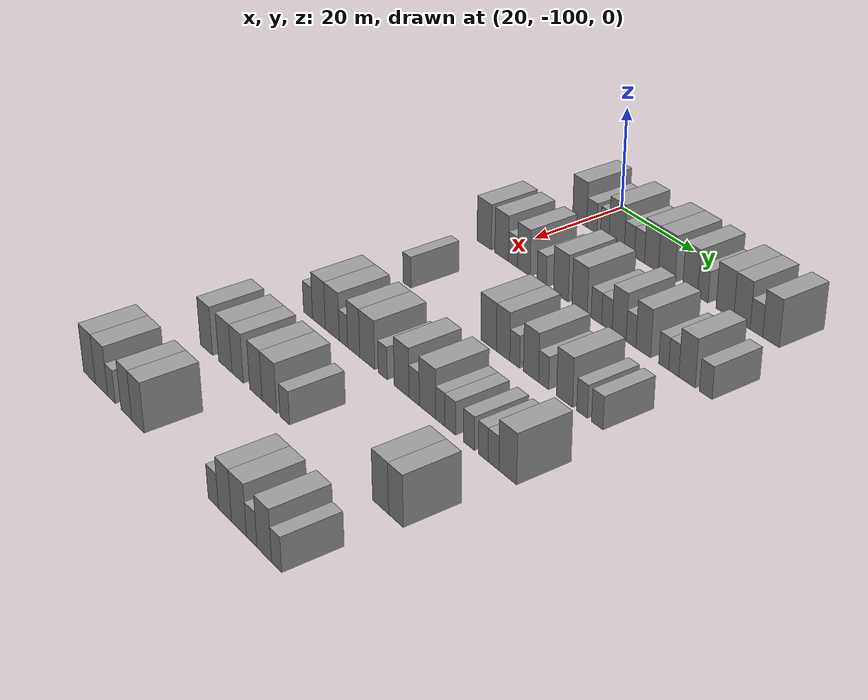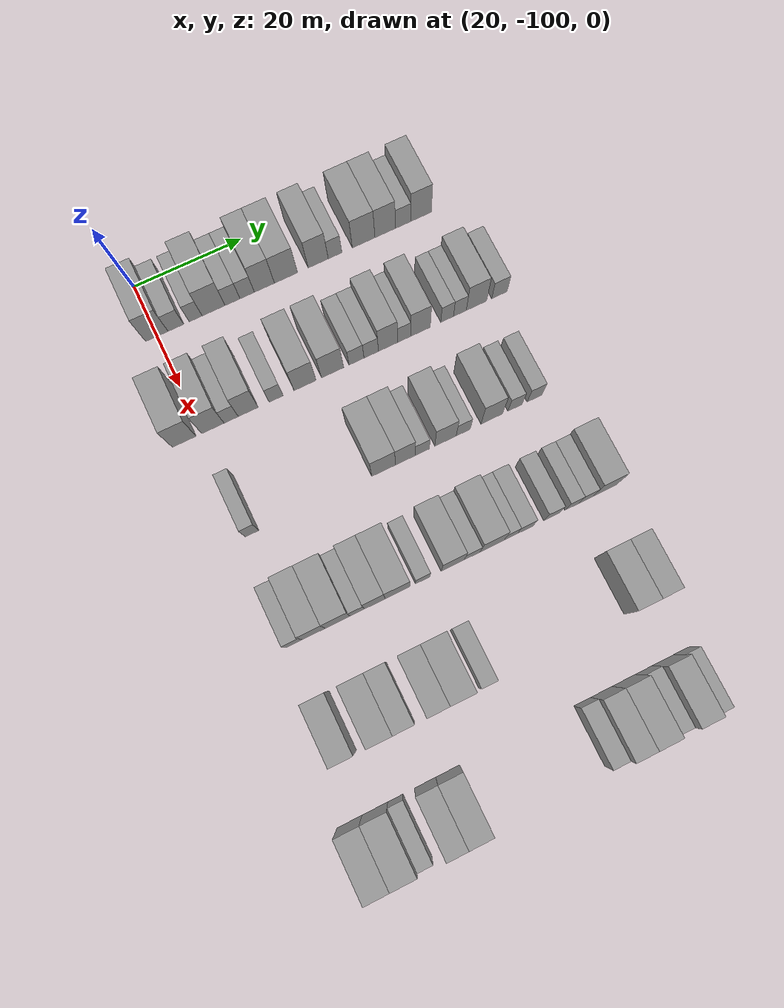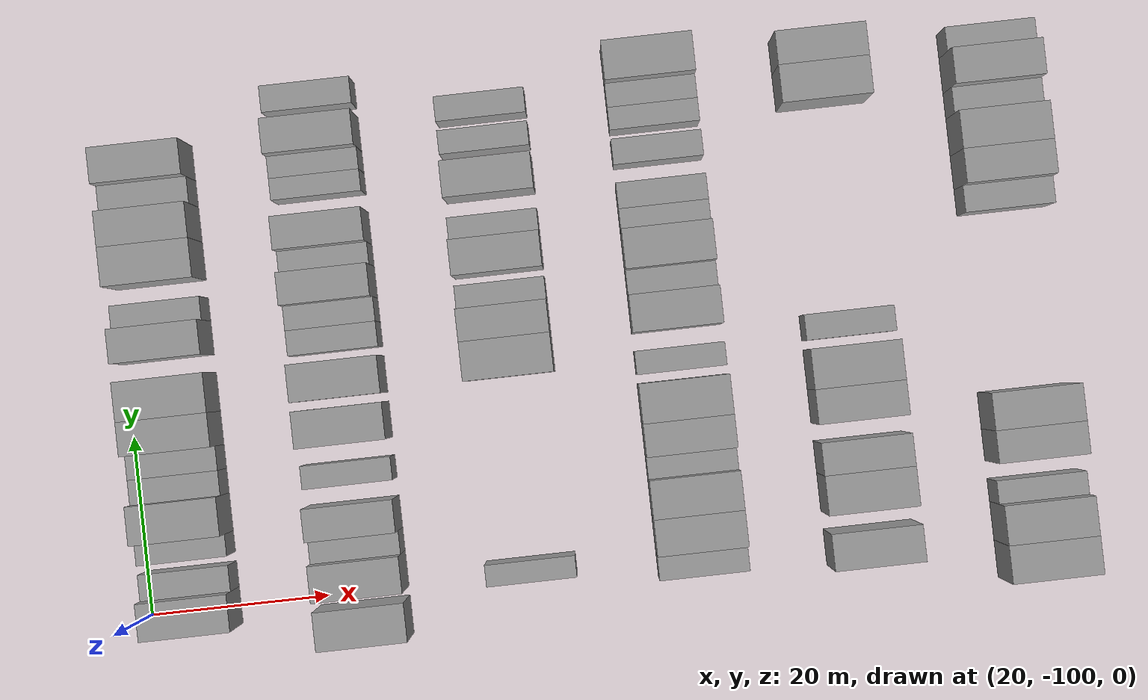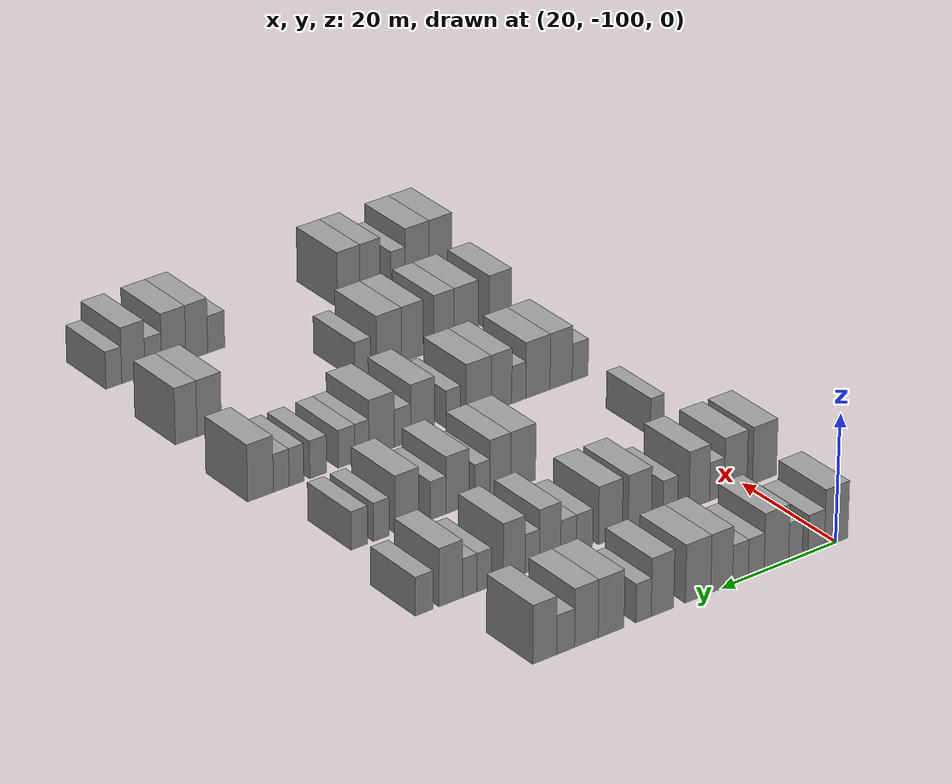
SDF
<sdf version="1.6">
 <world name="default">
  <model name="building_61">
   <static>1</static>
   <pose>25.0000 -99.9922 0 0.000000 0.000000 0.000000</pose>
   <link name="link">
    <pose>0 0 4.50 0 0 0</pose>
    <collision name="collision"><geometry><box><size>10.0000 4.1372 9.0000</size></box></geometry></collision>
    <visual name="visual">
     <cast_shadows>0</cast_shadows>
     <geometry><box><size>10.0000 4.1372 9.0000</size></box></geometry>
     <material>
      <script>
       <uri>model://grey_wall/materials/scripts</uri>
       <uri>model://grey_wall/materials/textures</uri>
       <name>vrc/grey_wall</name>
      </script>
     </material>
    </visual>
   </link>
  </model>
  <model name="building_62">
   <static>1</static>
   <pose>25.0000 -96.4658 0 0.000000 0.000000 0.000000</pose>
   <link name="link">
    <pose>0 0 3.00 0 0 0</pose>
    <collision name="collision"><geometry><box><size>10.0000 2.9156 6.0000</size></box></geometry></collision>
    <visual name="visual">
     <cast_shadows>0</cast_shadows>
     <geometry><box><size>10.0000 2.9156 6.0000</size></box></geometry>
     <material>
      <script>
       <uri>model://grey_wall/materials/scripts</uri>
       <uri>model://grey_wall/materials/textures</uri>
       <name>vrc/grey_wall</name>
      </script>
     </material>
    </visual>
   </link>
  </model>
  <model name="building_63">
   <static>1</static>
   <pose>25.0000 -92.8031 0 0.000000 0.000000 0.000000</pose>
   <link name="link">
    <pose>0 0 3.00 0 0 0</pose>
    <collision name="collision"><geometry><box><size>10.0000 2.4098 6.0000</size></box></geometry></collision>
    <visual name="visual">
     <cast_shadows>0</cast_shadows>
     <geometry><box><size>10.0000 2.4098 6.0000</size></box></geometry>
     <material>
      <script>
       <uri>model://grey_wall/materials/scripts</uri>
       <uri>model://grey_wall/materials/textures</uri>
       <name>vrc/grey_wall</name>
      </script>
     </material>
    </visual>
   </link>
  </model>
  <model name="building_64">
   <static>1</static>
   <pose>25.0000 -89.4570 0 0.000000 0.000000 0.000000</pose>
   <link name="link">
    <pose>0 0 4.50 0 0 0</pose>
    <collision name="collision"><geometry><box><size>10.0000 4.2825 9.0000</size></box></geometry></collision>
    <visual name="visual">
     <cast_shadows>0</cast_shadows>
     <geometry><box><size>10.0000 4.2825 9.0000</size></box></geometry>
     <material>
      <script>
       <uri>model://grey_wall/materials/scripts</uri>
       <uri>model://grey_wall/materials/textures</uri>
       <name>vrc/grey_wall</name>
      </script>
     </material>
    </visual>
   </link>
  </model>
  <model name="building_65">
   <static>1</static>
   <pose>25.0000 -85.9227 0 0.000000 0.000000 0.000000</pose>
   <link name="link">
    <pose>0 0 3.00 0 0 0</pose>
    <collision name="collision"><geometry><box><size>10.0000 2.7860 6.0000</size></box></geometry></collision>
    <visual name="visual">
     <cast_shadows>0</cast_shadows>
     <geometry><box><size>10.0000 2.7860 6.0000</size></box></geometry>
     <material>
      <script>
       <uri>model://grey_wall/materials/scripts</uri>
       <uri>model://grey_wall/materials/textures</uri>
       <name>vrc/grey_wall</name>
      </script>
     </material>
    </visual>
   </link>
  </model>
  <model name="building_66">
   <static>1</static>
   <pose>25.0000 -83.1837 0 0.000000 0.000000 0.000000</pose>
   <link name="link">
    <pose>0 0 3.00 0 0 0</pose>
    <collision name="collision"><geometry><box><size>10.0000 2.6921 6.0000</size></box></geometry></collision>
    <visual name="visual">
     <cast_shadows>0</cast_shadows>
     <geometry><box><size>10.0000 2.6921 6.0000</size></box></geometry>
     <material>
      <script>
       <uri>model://grey_wall/materials/scripts</uri>
       <uri>model://grey_wall/materials/textures</uri>
       <name>vrc/grey_wall</name>
      </script>
     </material>
    </visual>
   </link>
  </model>
  <model name="building_67">
   <static>1</static>
   <pose>25.0000 -79.9527 0 0.000000 0.000000 0.000000</pose>
   <link name="link">
    <pose>0 0 4.50 0 0 0</pose>
    <collision name="collision"><geometry><box><size>10.0000 3.7701 9.0000</size></box></geometry></collision>
    <visual name="visual">
     <cast_shadows>0</cast_shadows>
     <geometry><box><size>10.0000 3.7701 9.0000</size></box></geometry>
     <material>
      <script>
       <uri>model://grey_wall/materials/scripts</uri>
       <uri>model://grey_wall/materials/textures</uri>
       <name>vrc/grey_wall</name>
      </script>
     </material>
    </visual>
   </link>
  </model>
  <model name="building_68">
   <static>1</static>
   <pose>25.0000 -75.8776 0 0.000000 0.000000 0.000000</pose>
   <link name="link">
    <pose>0 0 4.50 0 0 0</pose>
    <collision name="collision"><geometry><box><size>10.0000 4.3800 9.0000</size></box></geometry></collision>
    <visual name="visual">
     <cast_shadows>0</cast_shadows>
     <geometry><box><size>10.0000 4.3800 9.0000</size></box></geometry>
     <material>
      <script>
       <uri>model://grey_wall/materials/scripts</uri>
       <uri>model://grey_wall/materials/textures</uri>
       <name>vrc/grey_wall</name>
      </script>
     </material>
    </visual>
   </link>
  </model>
  <model name="building_69">
   <static>1</static>
   <pose>25.0000 -69.7725 0 0.000000 0.000000 0.000000</pose>
   <link name="link">
    <pose>0 0 4.50 0 0 0</pose>
    <collision name="collision"><geometry><box><size>10.0000 3.8302 9.0000</size></box></geometry></collision>
    <visual name="visual">
     <cast_shadows>0</cast_shadows>
     <geometry><box><size>10.0000 3.8302 9.0000</size></box></geometry>
     <material>
      <script>
       <uri>model://grey_wall/materials/scripts</uri>
       <uri>model://grey_wall/materials/textures</uri>
       <name>vrc/grey_wall</name>
      </script>
     </material>
    </visual>
   </link>
  </model>
  <model name="building_70">
   <static>1</static>
   <pose>25.0000 -66.5474 0 0.000000 0.000000 0.000000</pose>
   <link name="link">
    <pose>0 0 3.00 0 0 0</pose>
    <collision name="collision"><geometry><box><size>10.0000 2.6201 6.0000</size></box></geometry></collision>
    <visual name="visual">
     <cast_shadows>0</cast_shadows>
     <geometry><box><size>10.0000 2.6201 6.0000</size></box></geometry>
     <material>
      <script>
       <uri>model://grey_wall/materials/scripts</uri>
       <uri>model://grey_wall/materials/textures</uri>
       <name>vrc/grey_wall</name>
      </script>
     </material>
    </visual>
   </link>
  </model>
  <model name="building_71">
   <static>1</static>
   <pose>25.0000 -61.0674 0 0.000000 0.000000 0.000000</pose>
   <link name="link">
    <pose>0 0 4.50 0 0 0</pose>
    <collision name="collision"><geometry><box><size>10.0000 4.3399 9.0000</size></box></geometry></collision>
    <visual name="visual">
     <cast_shadows>0</cast_shadows>
     <geometry><box><size>10.0000 4.3399 9.0000</size></box></geometry>
     <material>
      <script>
       <uri>model://grey_wall/materials/scripts</uri>
       <uri>model://grey_wall/materials/textures</uri>
       <name>vrc/grey_wall</name>
      </script>
     </material>
    </visual>
   </link>
  </model>
  <model name="building_72">
   <static>1</static>
   <pose>25.0000 -56.9074 0 0.000000 0.000000 0.000000</pose>
   <link name="link">
    <pose>0 0 4.50 0 0 0</pose>
    <collision name="collision"><geometry><box><size>10.0000 3.9801 9.0000</size></box></geometry></collision>
    <visual name="visual">
     <cast_shadows>0</cast_shadows>
     <geometry><box><size>10.0000 3.9801 9.0000</size></box></geometry>
     <material>
      <script>
       <uri>model://grey_wall/materials/scripts</uri>
       <uri>model://grey_wall/materials/textures</uri>
       <name>vrc/grey_wall</name>
      </script>
     </material>
    </visual>
   </link>
  </model>
  <model name="building_73">
   <static>1</static>
   <pose>25.0000 -53.4187 0 0.000000 0.000000 0.000000</pose>
   <link name="link">
    <pose>0 0 3.00 0 0 0</pose>
    <collision name="collision"><geometry><box><size>10.0000 2.9973 6.0000</size></box></geometry></collision>
    <visual name="visual">
     <cast_shadows>0</cast_shadows>
     <geometry><box><size>10.0000 2.9973 6.0000</size></box></geometry>
     <material>
      <script>
       <uri>model://grey_wall/materials/scripts</uri>
       <uri>model://grey_wall/materials/textures</uri>
       <name>vrc/grey_wall</name>
      </script>
     </material>
    </visual>
   </link>
  </model>
  <model name="building_74">
   <static>1</static>
   <pose>25.0000 -49.9372 0 0.000000 0.000000 0.000000</pose>
   <link name="link">
    <pose>0 0 4.50 0 0 0</pose>
    <collision name="collision"><geometry><box><size>10.0000 3.9659 9.0000</size></box></geometry></collision>
    <visual name="visual">
     <cast_shadows>0</cast_shadows>
     <geometry><box><size>10.0000 3.9659 9.0000</size></box></geometry>
     <material>
      <script>
       <uri>model://grey_wall/materials/scripts</uri>
       <uri>model://grey_wall/materials/textures</uri>
       <name>vrc/grey_wall</name>
      </script>
     </material>
    </visual>
   </link>
  </model>
  <model name="building_235">
   <static>1</static>
   <pose>44.0000 -103.1138 0 0.000000 0.000000 0.000000</pose>
   <link name="link">
    <pose>0 0 4.50 0 0 0</pose>
    <collision name="collision"><geometry><box><size>10.0000 4.2926 9.0000</size></box></geometry></collision>
    <visual name="visual">
     <cast_shadows>0</cast_shadows>
     <geometry><box><size>10.0000 4.2926 9.0000</size></box></geometry>
     <material>
      <script>
       <uri>model://grey_wall/materials/scripts</uri>
       <uri>model://grey_wall/materials/textures</uri>
       <name>vrc/grey_wall</name>
      </script>
     </material>
    </visual>
   </link>
  </model>
  <model name="building_236">
   <static>1</static>
   <pose>44.0000 -97.9394 0 0.000000 0.000000 0.000000</pose>
   <link name="link">
    <pose>0 0 4.50 0 0 0</pose>
    <collision name="collision"><geometry><box><size>10.0000 4.0561 9.0000</size></box></geometry></collision>
    <visual name="visual">
     <cast_shadows>0</cast_shadows>
     <geometry><box><size>10.0000 4.0561 9.0000</size></box></geometry>
     <material>
      <script>
       <uri>model://grey_wall/materials/scripts</uri>
       <uri>model://grey_wall/materials/textures</uri>
       <name>vrc/grey_wall</name>
      </script>
     </material>
    </visual>
   </link>
  </model>
  <model name="building_237">
   <static>1</static>
   <pose>44.0000 -94.6155 0 0.000000 0.000000 0.000000</pose>
   <link name="link">
    <pose>0 0 3.00 0 0 0</pose>
    <collision name="collision"><geometry><box><size>10.0000 2.5917 6.0000</size></box></geometry></collision>
    <visual name="visual">
     <cast_shadows>0</cast_shadows>
     <geometry><box><size>10.0000 2.5917 6.0000</size></box></geometry>
     <material>
      <script>
       <uri>model://grey_wall/materials/scripts</uri>
       <uri>model://grey_wall/materials/textures</uri>
       <name>vrc/grey_wall</name>
      </script>
     </material>
    </visual>
   </link>
  </model>
  <model name="building_238">
   <static>1</static>
   <pose>44.0000 -91.5014 0 0.000000 0.000000 0.000000</pose>
   <link name="link">
    <pose>0 0 4.50 0 0 0</pose>
    <collision name="collision"><geometry><box><size>10.0000 3.6364 9.0000</size></box></geometry></collision>
    <visual name="visual">
     <cast_shadows>0</cast_shadows>
     <geometry><box><size>10.0000 3.6364 9.0000</size></box></geometry>
     <material>
      <script>
       <uri>model://grey_wall/materials/scripts</uri>
       <uri>model://grey_wall/materials/textures</uri>
       <name>vrc/grey_wall</name>
      </script>
     </material>
    </visual>
   </link>
  </model>
  <model name="building_239">
   <static>1</static>
   <pose>44.0000 -86.3907 0 0.000000 0.000000 0.000000</pose>
   <link name="link">
    <pose>0 0 3.00 0 0 0</pose>
    <collision name="collision"><geometry><box><size>10.0000 2.5850 6.0000</size></box></geometry></collision>
    <visual name="visual">
     <cast_shadows>0</cast_shadows>
     <geometry><box><size>10.0000 2.5850 6.0000</size></box></geometry>
     <material>
      <script>
       <uri>model://grey_wall/materials/scripts</uri>
       <uri>model://grey_wall/materials/textures</uri>
       <name>vrc/grey_wall</name>
      </script>
     </material>
    </visual>
   </link>
  </model>
  <model name="building_240">
   <static>1</static>
   <pose>44.0000 -81.0617 0 0.000000 0.000000 0.000000</pose>
   <link name="link">
    <pose>0 0 4.50 0 0 0</pose>
    <collision name="collision"><geometry><box><size>10.0000 4.0732 9.0000</size></box></geometry></collision>
    <visual name="visual">
     <cast_shadows>0</cast_shadows>
     <geometry><box><size>10.0000 4.0732 9.0000</size></box></geometry>
     <material>
      <script>
       <uri>model://grey_wall/materials/scripts</uri>
       <uri>model://grey_wall/materials/textures</uri>
       <name>vrc/grey_wall</name>
      </script>
     </material>
    </visual>
   </link>
  </model>
  <model name="building_241">
   <static>1</static>
   <pose>44.0000 -75.9547 0 0.000000 0.000000 0.000000</pose>
   <link name="link">
    <pose>0 0 4.50 0 0 0</pose>
    <collision name="collision"><geometry><box><size>10.0000 4.1408 9.0000</size></box></geometry></collision>
    <visual name="visual">
     <cast_shadows>0</cast_shadows>
     <geometry><box><size>10.0000 4.1408 9.0000</size></box></geometry>
     <material>
      <script>
       <uri>model://grey_wall/materials/scripts</uri>
       <uri>model://grey_wall/materials/textures</uri>
       <name>vrc/grey_wall</name>
      </script>
     </material>
    </visual>
   </link>
  </model>
  <model name="building_242">
   <static>1</static>
   <pose>44.0000 -71.4870 0 0.000000 0.000000 0.000000</pose>
   <link name="link">
    <pose>0 0 3.00 0 0 0</pose>
    <collision name="collision"><geometry><box><size>10.0000 2.7945 6.0000</size></box></geometry></collision>
    <visual name="visual">
     <cast_shadows>0</cast_shadows>
     <geometry><box><size>10.0000 2.7945 6.0000</size></box></geometry>
     <material>
      <script>
       <uri>model://grey_wall/materials/scripts</uri>
       <uri>model://grey_wall/materials/textures</uri>
       <name>vrc/grey_wall</name>
      </script>
     </material>
    </visual>
   </link>
  </model>
  <model name="building_243">
   <static>1</static>
   <pose>44.0000 -68.7344 0 0.000000 0.000000 0.000000</pose>
   <link name="link">
    <pose>0 0 3.00 0 0 0</pose>
    <collision name="collision"><geometry><box><size>10.0000 2.7108 6.0000</size></box></geometry></collision>
    <visual name="visual">
     <cast_shadows>0</cast_shadows>
     <geometry><box><size>10.0000 2.7108 6.0000</size></box></geometry>
     <material>
      <script>
       <uri>model://grey_wall/materials/scripts</uri>
       <uri>model://grey_wall/materials/textures</uri>
       <name>vrc/grey_wall</name>
      </script>
     </material>
    </visual>
   </link>
  </model>
  <model name="building_244">
   <static>1</static>
   <pose>44.0000 -65.5699 0 0.000000 0.000000 0.000000</pose>
   <link name="link">
    <pose>0 0 4.50 0 0 0</pose>
    <collision name="collision"><geometry><box><size>10.0000 3.6183 9.0000</size></box></geometry></collision>
    <visual name="visual">
     <cast_shadows>0</cast_shadows>
     <geometry><box><size>10.0000 3.6183 9.0000</size></box></geometry>
     <material>
      <script>
       <uri>model://grey_wall/materials/scripts</uri>
       <uri>model://grey_wall/materials/textures</uri>
       <name>vrc/grey_wall</name>
      </script>
     </material>
    </visual>
   </link>
  </model>
  <model name="building_245">
   <static>1</static>
   <pose>44.0000 -62.5267 0 0.000000 0.000000 0.000000</pose>
   <link name="link">
    <pose>0 0 3.00 0 0 0</pose>
    <collision name="collision"><geometry><box><size>10.0000 2.4680 6.0000</size></box></geometry></collision>
    <visual name="visual">
     <cast_shadows>0</cast_shadows>
     <geometry><box><size>10.0000 2.4680 6.0000</size></box></geometry>
     <material>
      <script>
       <uri>model://grey_wall/materials/scripts</uri>
       <uri>model://grey_wall/materials/textures</uri>
       <name>vrc/grey_wall</name>
      </script>
     </material>
    </visual>
   </link>
  </model>
  <model name="building_246">
   <static>1</static>
   <pose>44.0000 -59.4521 0 0.000000 0.000000 0.000000</pose>
   <link name="link">
    <pose>0 0 4.50 0 0 0</pose>
    <collision name="collision"><geometry><box><size>10.0000 3.6812 9.0000</size></box></geometry></collision>
    <visual name="visual">
     <cast_shadows>0</cast_shadows>
     <geometry><box><size>10.0000 3.6812 9.0000</size></box></geometry>
     <material>
      <script>
       <uri>model://grey_wall/materials/scripts</uri>
       <uri>model://grey_wall/materials/textures</uri>
       <name>vrc/grey_wall</name>
      </script>
     </material>
    </visual>
   </link>
  </model>
  <model name="building_247">
   <static>1</static>
   <pose>44.0000 -54.3995 0 0.000000 0.000000 0.000000</pose>
   <link name="link">
    <pose>0 0 3.00 0 0 0</pose>
    <collision name="collision"><geometry><box><size>10.0000 2.4240 6.0000</size></box></geometry></collision>
    <visual name="visual">
     <cast_shadows>0</cast_shadows>
     <geometry><box><size>10.0000 2.4240 6.0000</size></box></geometry>
     <material>
      <script>
       <uri>model://grey_wall/materials/scripts</uri>
       <uri>model://grey_wall/materials/textures</uri>
       <name>vrc/grey_wall</name>
      </script>
     </material>
    </visual>
   </link>
  </model>
  <model name="building_248">
   <static>1</static>
   <pose>44.0000 -51.9648 0 0.000000 0.000000 0.000000</pose>
   <link name="link">
    <pose>0 0 3.00 0 0 0</pose>
    <collision name="collision"><geometry><box><size>10.0000 2.4454 6.0000</size></box></geometry></collision>
    <visual name="visual">
     <cast_shadows>0</cast_shadows>
     <geometry><box><size>10.0000 2.4454 6.0000</size></box></geometry>
     <material>
      <script>
       <uri>model://grey_wall/materials/scripts</uri>
       <uri>model://grey_wall/materials/textures</uri>
       <name>vrc/grey_wall</name>
      </script>
     </material>
    </visual>
   </link>
  </model>
  <model name="building_249">
   <static>1</static>
   <pose>44.0000 -48.7919 0 0.000000 0.000000 0.000000</pose>
   <link name="link">
    <pose>0 0 4.50 0 0 0</pose>
    <collision name="collision"><geometry><box><size>10.0000 3.9004 9.0000</size></box></geometry></collision>
    <visual name="visual">
     <cast_shadows>0</cast_shadows>
     <geometry><box><size>10.0000 3.9004 9.0000</size></box></geometry>
     <material>
      <script>
       <uri>model://grey_wall/materials/scripts</uri>
       <uri>model://grey_wall/materials/textures</uri>
       <name>vrc/grey_wall</name>
      </script>
     </material>
    </visual>
   </link>
  </model>
  <model name="building_250">
   <static>1</static>
   <pose>44.0000 -44.3655 0 0.000000 0.000000 0.000000</pose>
   <link name="link">
    <pose>0 0 3.00 0 0 0</pose>
    <collision name="collision"><geometry><box><size>10.0000 2.9524 6.0000</size></box></geometry></collision>
    <visual name="visual">
     <cast_shadows>0</cast_shadows>
     <geometry><box><size>10.0000 2.9524 6.0000</size></box></geometry>
     <material>
      <script>
       <uri>model://grey_wall/materials/scripts</uri>
       <uri>model://grey_wall/materials/textures</uri>
       <name>vrc/grey_wall</name>
      </script>
     </material>
    </visual>
   </link>
  </model>
  <model name="building_411">
   <static>1</static>
   <pose>63.0000 -99.3310 0 0.000000 0.000000 0.000000</pose>
   <link name="link">
    <pose>0 0 3.00 0 0 0</pose>
    <collision name="collision"><geometry><box><size>10.0000 2.4071 6.0000</size></box></geometry></collision>
    <visual name="visual">
     <cast_shadows>0</cast_shadows>
     <geometry><box><size>10.0000 2.4071 6.0000</size></box></geometry>
     <material>
      <script>
       <uri>model://grey_wall/materials/scripts</uri>
       <uri>model://grey_wall/materials/textures</uri>
       <name>vrc/grey_wall</name>
      </script>
     </material>
    </visual>
   </link>
  </model>
  <model name="building_412">
   <static>1</static>
   <pose>63.0000 -75.6290 0 0.000000 0.000000 0.000000</pose>
   <link name="link">
    <pose>0 0 4.50 0 0 0</pose>
    <collision name="collision"><geometry><box><size>10.0000 4.3323 9.0000</size></box></geometry></collision>
    <visual name="visual">
     <cast_shadows>0</cast_shadows>
     <geometry><box><size>10.0000 4.3323 9.0000</size></box></geometry>
     <material>
      <script>
       <uri>model://grey_wall/materials/scripts</uri>
       <uri>model://grey_wall/materials/textures</uri>
       <name>vrc/grey_wall</name>
      </script>
     </material>
    </visual>
   </link>
  </model>
  <model name="building_413">
   <static>1</static>
   <pose>63.0000 -71.6511 0 0.000000 0.000000 0.000000</pose>
   <link name="link">
    <pose>0 0 4.50 0 0 0</pose>
    <collision name="collision"><geometry><box><size>10.0000 3.6237 9.0000</size></box></geometry></collision>
    <visual name="visual">
     <cast_shadows>0</cast_shadows>
     <geometry><box><size>10.0000 3.6237 9.0000</size></box></geometry>
     <material>
      <script>
       <uri>model://grey_wall/materials/scripts</uri>
       <uri>model://grey_wall/materials/textures</uri>
       <name>vrc/grey_wall</name>
      </script>
     </material>
    </visual>
   </link>
  </model>
  <model name="building_414">
   <static>1</static>
   <pose>63.0000 -68.5302 0 0.000000 0.000000 0.000000</pose>
   <link name="link">
    <pose>0 0 3.00 0 0 0</pose>
    <collision name="collision"><geometry><box><size>10.0000 2.6180 6.0000</size></box></geometry></collision>
    <visual name="visual">
     <cast_shadows>0</cast_shadows>
     <geometry><box><size>10.0000 2.6180 6.0000</size></box></geometry>
     <material>
      <script>
       <uri>model://grey_wall/materials/scripts</uri>
       <uri>model://grey_wall/materials/textures</uri>
       <name>vrc/grey_wall</name>
      </script>
     </material>
    </visual>
   </link>
  </model>
  <model name="building_415">
   <static>1</static>
   <pose>63.0000 -64.2441 0 0.000000 0.000000 0.000000</pose>
   <link name="link">
    <pose>0 0 4.50 0 0 0</pose>
    <collision name="collision"><geometry><box><size>10.0000 3.9542 9.0000</size></box></geometry></collision>
    <visual name="visual">
     <cast_shadows>0</cast_shadows>
     <geometry><box><size>10.0000 3.9542 9.0000</size></box></geometry>
     <material>
      <script>
       <uri>model://grey_wall/materials/scripts</uri>
       <uri>model://grey_wall/materials/textures</uri>
       <name>vrc/grey_wall</name>
      </script>
     </material>
    </visual>
   </link>
  </model>
  <model name="building_416">
   <static>1</static>
   <pose>63.0000 -60.9572 0 0.000000 0.000000 0.000000</pose>
   <link name="link">
    <pose>0 0 3.00 0 0 0</pose>
    <collision name="collision"><geometry><box><size>10.0000 2.6196 6.0000</size></box></geometry></collision>
    <visual name="visual">
     <cast_shadows>0</cast_shadows>
     <geometry><box><size>10.0000 2.6196 6.0000</size></box></geometry>
     <material>
      <script>
       <uri>model://grey_wall/materials/scripts</uri>
       <uri>model://grey_wall/materials/textures</uri>
       <name>vrc/grey_wall</name>
      </script>
     </material>
    </visual>
   </link>
  </model>
  <model name="building_417">
   <static>1</static>
   <pose>63.0000 -55.6293 0 0.000000 0.000000 0.000000</pose>
   <link name="link">
    <pose>0 0 4.50 0 0 0</pose>
    <collision name="collision"><geometry><box><size>10.0000 4.0363 9.0000</size></box></geometry></collision>
    <visual name="visual">
     <cast_shadows>0</cast_shadows>
     <geometry><box><size>10.0000 4.0363 9.0000</size></box></geometry>
     <material>
      <script>
       <uri>model://grey_wall/materials/scripts</uri>
       <uri>model://grey_wall/materials/textures</uri>
       <name>vrc/grey_wall</name>
      </script>
     </material>
    </visual>
   </link>
  </model>
  <model name="building_418">
   <static>1</static>
   <pose>63.0000 -51.2866 0 0.000000 0.000000 0.000000</pose>
   <link name="link">
    <pose>0 0 3.00 0 0 0</pose>
    <collision name="collision"><geometry><box><size>10.0000 2.6491 6.0000</size></box></geometry></collision>
    <visual name="visual">
     <cast_shadows>0</cast_shadows>
     <geometry><box><size>10.0000 2.6491 6.0000</size></box></geometry>
     <material>
      <script>
       <uri>model://grey_wall/materials/scripts</uri>
       <uri>model://grey_wall/materials/textures</uri>
       <name>vrc/grey_wall</name>
      </script>
     </material>
    </visual>
   </link>
  </model>
  <model name="building_419">
   <static>1</static>
   <pose>63.0000 -47.5744 0 0.000000 0.000000 0.000000</pose>
   <link name="link">
    <pose>0 0 3.00 0 0 0</pose>
    <collision name="collision"><geometry><box><size>10.0000 2.7754 6.0000</size></box></geometry></collision>
    <visual name="visual">
     <cast_shadows>0</cast_shadows>
     <geometry><box><size>10.0000 2.7754 6.0000</size></box></geometry>
     <material>
      <script>
       <uri>model://grey_wall/materials/scripts</uri>
       <uri>model://grey_wall/materials/textures</uri>
       <name>vrc/grey_wall</name>
      </script>
     </material>
    </visual>
   </link>
  </model>
  <model name="building_572">
   <static>1</static>
   <pose>82.0000 -100.5271 0 0.000000 0.000000 0.000000</pose>
   <link name="link">
    <pose>0 0 3.00 0 0 0</pose>
    <collision name="collision"><geometry><box><size>10.0000 2.8648 6.0000</size></box></geometry></collision>
    <visual name="visual">
     <cast_shadows>0</cast_shadows>
     <geometry><box><size>10.0000 2.8648 6.0000</size></box></geometry>
     <material>
      <script>
       <uri>model://grey_wall/materials/scripts</uri>
       <uri>model://grey_wall/materials/textures</uri>
       <name>vrc/grey_wall</name>
      </script>
     </material>
    </visual>
   </link>
  </model>
  <model name="building_573">
   <static>1</static>
   <pose>82.0000 -97.0796 0 0.000000 0.000000 0.000000</pose>
   <link name="link">
    <pose>0 0 4.50 0 0 0</pose>
    <collision name="collision"><geometry><box><size>10.0000 4.0302 9.0000</size></box></geometry></collision>
    <visual name="visual">
     <cast_shadows>0</cast_shadows>
     <geometry><box><size>10.0000 4.0302 9.0000</size></box></geometry>
     <material>
      <script>
       <uri>model://grey_wall/materials/scripts</uri>
       <uri>model://grey_wall/materials/textures</uri>
       <name>vrc/grey_wall</name>
      </script>
     </material>
    </visual>
   </link>
  </model>
  <model name="building_574">
   <static>1</static>
   <pose>82.0000 -92.9082 0 0.000000 0.000000 0.000000</pose>
   <link name="link">
    <pose>0 0 4.50 0 0 0</pose>
    <collision name="collision"><geometry><box><size>10.0000 4.3126 9.0000</size></box></geometry></collision>
    <visual name="visual">
     <cast_shadows>0</cast_shadows>
     <geometry><box><size>10.0000 4.3126 9.0000</size></box></geometry>
     <material>
      <script>
       <uri>model://grey_wall/materials/scripts</uri>
       <uri>model://grey_wall/materials/textures</uri>
       <name>vrc/grey_wall</name>
      </script>
     </material>
    </visual>
   </link>
  </model>
  <model name="building_575">
   <static>1</static>
   <pose>82.0000 -89.4919 0 0.000000 0.000000 0.000000</pose>
   <link name="link">
    <pose>0 0 3.00 0 0 0</pose>
    <collision name="collision"><geometry><box><size>10.0000 2.5201 6.0000</size></box></geometry></collision>
    <visual name="visual">
     <cast_shadows>0</cast_shadows>
     <geometry><box><size>10.0000 2.5201 6.0000</size></box></geometry>
     <material>
      <script>
       <uri>model://grey_wall/materials/scripts</uri>
       <uri>model://grey_wall/materials/textures</uri>
       <name>vrc/grey_wall</name>
      </script>
     </material>
    </visual>
   </link>
  </model>
  <model name="building_576">
   <static>1</static>
   <pose>82.0000 -86.4032 0 0.000000 0.000000 0.000000</pose>
   <link name="link">
    <pose>0 0 4.50 0 0 0</pose>
    <collision name="collision"><geometry><box><size>10.0000 3.6571 9.0000</size></box></geometry></collision>
    <visual name="visual">
     <cast_shadows>0</cast_shadows>
     <geometry><box><size>10.0000 3.6571 9.0000</size></box></geometry>
     <material>
      <script>
       <uri>model://grey_wall/materials/scripts</uri>
       <uri>model://grey_wall/materials/textures</uri>
       <name>vrc/grey_wall</name>
      </script>
     </material>
    </visual>
   </link>
  </model>
  <model name="building_577">
   <static>1</static>
   <pose>82.0000 -82.3729 0 0.000000 0.000000 0.000000</pose>
   <link name="link">
    <pose>0 0 4.50 0 0 0</pose>
    <collision name="collision"><geometry><box><size>10.0000 4.4036 9.0000</size></box></geometry></collision>
    <visual name="visual">
     <cast_shadows>0</cast_shadows>
     <geometry><box><size>10.0000 4.4036 9.0000</size></box></geometry>
     <material>
      <script>
       <uri>model://grey_wall/materials/scripts</uri>
       <uri>model://grey_wall/materials/textures</uri>
       <name>vrc/grey_wall</name>
      </script>
     </material>
    </visual>
   </link>
  </model>
  <model name="building_578">
   <static>1</static>
   <pose>82.0000 -77.8670 0 0.000000 0.000000 0.000000</pose>
   <link name="link">
    <pose>0 0 3.00 0 0 0</pose>
    <collision name="collision"><geometry><box><size>10.0000 2.6083 6.0000</size></box></geometry></collision>
    <visual name="visual">
     <cast_shadows>0</cast_shadows>
     <geometry><box><size>10.0000 2.6083 6.0000</size></box></geometry>
     <material>
      <script>
       <uri>model://grey_wall/materials/scripts</uri>
       <uri>model://grey_wall/materials/textures</uri>
       <name>vrc/grey_wall</name>
      </script>
     </material>
    </visual>
   </link>
  </model>
  <model name="building_579">
   <static>1</static>
   <pose>82.0000 -72.4835 0 0.000000 0.000000 0.000000</pose>
   <link name="link">
    <pose>0 0 4.50 0 0 0</pose>
    <collision name="collision"><geometry><box><size>10.0000 4.1587 9.0000</size></box></geometry></collision>
    <visual name="visual">
     <cast_shadows>0</cast_shadows>
     <geometry><box><size>10.0000 4.1587 9.0000</size></box></geometry>
     <material>
      <script>
       <uri>model://grey_wall/materials/scripts</uri>
       <uri>model://grey_wall/materials/textures</uri>
       <name>vrc/grey_wall</name>
      </script>
     </material>
    </visual>
   </link>
  </model>
  <model name="building_580">
   <static>1</static>
   <pose>82.0000 -68.9908 0 0.000000 0.000000 0.000000</pose>
   <link name="link">
    <pose>0 0 3.00 0 0 0</pose>
    <collision name="collision"><geometry><box><size>10.0000 2.8267 6.0000</size></box></geometry></collision>
    <visual name="visual">
     <cast_shadows>0</cast_shadows>
     <geometry><box><size>10.0000 2.8267 6.0000</size></box></geometry>
     <material>
      <script>
       <uri>model://grey_wall/materials/scripts</uri>
       <uri>model://grey_wall/materials/textures</uri>
       <name>vrc/grey_wall</name>
      </script>
     </material>
    </visual>
   </link>
  </model>
  <model name="building_581">
   <static>1</static>
   <pose>82.0000 -65.3667 0 0.000000 0.000000 0.000000</pose>
   <link name="link">
    <pose>0 0 4.50 0 0 0</pose>
    <collision name="collision"><geometry><box><size>10.0000 4.4214 9.0000</size></box></geometry></collision>
    <visual name="visual">
     <cast_shadows>0</cast_shadows>
     <geometry><box><size>10.0000 4.4214 9.0000</size></box></geometry>
     <material>
      <script>
       <uri>model://grey_wall/materials/scripts</uri>
       <uri>model://grey_wall/materials/textures</uri>
       <name>vrc/grey_wall</name>
      </script>
     </material>
    </visual>
   </link>
  </model>
  <model name="building_582">
   <static>1</static>
   <pose>82.0000 -61.9543 0 0.000000 0.000000 0.000000</pose>
   <link name="link">
    <pose>0 0 3.00 0 0 0</pose>
    <collision name="collision"><geometry><box><size>10.0000 2.4034 6.0000</size></box></geometry></collision>
    <visual name="visual">
     <cast_shadows>0</cast_shadows>
     <geometry><box><size>10.0000 2.4034 6.0000</size></box></geometry>
     <material>
      <script>
       <uri>model://grey_wall/materials/scripts</uri>
       <uri>model://grey_wall/materials/textures</uri>
       <name>vrc/grey_wall</name>
      </script>
     </material>
    </visual>
   </link>
  </model>
  <model name="building_583">
   <static>1</static>
   <pose>82.0000 -59.3142 0 0.000000 0.000000 0.000000</pose>
   <link name="link">
    <pose>0 0 3.00 0 0 0</pose>
    <collision name="collision"><geometry><box><size>10.0000 2.8770 6.0000</size></box></geometry></collision>
    <visual name="visual">
     <cast_shadows>0</cast_shadows>
     <geometry><box><size>10.0000 2.8770 6.0000</size></box></geometry>
     <material>
      <script>
       <uri>model://grey_wall/materials/scripts</uri>
       <uri>model://grey_wall/materials/textures</uri>
       <name>vrc/grey_wall</name>
      </script>
     </material>
    </visual>
   </link>
  </model>
  <model name="building_584">
   <static>1</static>
   <pose>82.0000 -54.4434 0 0.000000 0.000000 0.000000</pose>
   <link name="link">
    <pose>0 0 3.00 0 0 0</pose>
    <collision name="collision"><geometry><box><size>10.0000 2.8647 6.0000</size></box></geometry></collision>
    <visual name="visual">
     <cast_shadows>0</cast_shadows>
     <geometry><box><size>10.0000 2.8647 6.0000</size></box></geometry>
     <material>
      <script>
       <uri>model://grey_wall/materials/scripts</uri>
       <uri>model://grey_wall/materials/textures</uri>
       <name>vrc/grey_wall</name>
      </script>
     </material>
    </visual>
   </link>
  </model>
  <model name="building_585">
   <static>1</static>
   <pose>82.0000 -50.7508 0 0.000000 0.000000 0.000000</pose>
   <link name="link">
    <pose>0 0 3.00 0 0 0</pose>
    <collision name="collision"><geometry><box><size>10.0000 2.5204 6.0000</size></box></geometry></collision>
    <visual name="visual">
     <cast_shadows>0</cast_shadows>
     <geometry><box><size>10.0000 2.5204 6.0000</size></box></geometry>
     <material>
      <script>
       <uri>model://grey_wall/materials/scripts</uri>
       <uri>model://grey_wall/materials/textures</uri>
       <name>vrc/grey_wall</name>
      </script>
     </material>
    </visual>
   </link>
  </model>
  <model name="building_586">
   <static>1</static>
   <pose>82.0000 -48.1603 0 0.000000 0.000000 0.000000</pose>
   <link name="link">
    <pose>0 0 3.00 0 0 0</pose>
    <collision name="collision"><geometry><box><size>10.0000 2.6608 6.0000</size></box></geometry></collision>
    <visual name="visual">
     <cast_shadows>0</cast_shadows>
     <geometry><box><size>10.0000 2.6608 6.0000</size></box></geometry>
     <material>
      <script>
       <uri>model://grey_wall/materials/scripts</uri>
       <uri>model://grey_wall/materials/textures</uri>
       <name>vrc/grey_wall</name>
      </script>
     </material>
    </visual>
   </link>
  </model>
  <model name="building_587">
   <static>1</static>
   <pose>82.0000 -44.6582 0 0.000000 0.000000 0.000000</pose>
   <link name="link">
    <pose>0 0 4.50 0 0 0</pose>
    <collision name="collision"><geometry><box><size>10.0000 4.3433 9.0000</size></box></geometry></collision>
    <visual name="visual">
     <cast_shadows>0</cast_shadows>
     <geometry><box><size>10.0000 4.3433 9.0000</size></box></geometry>
     <material>
      <script>
       <uri>model://grey_wall/materials/scripts</uri>
       <uri>model://grey_wall/materials/textures</uri>
       <name>vrc/grey_wall</name>
      </script>
     </material>
    </visual>
   </link>
  </model>
  <model name="building_756">
   <static>1</static>
   <pose>101.0000 -100.7473 0 0.000000 0.000000 0.000000</pose>
   <link name="link">
    <pose>0 0 4.50 0 0 0</pose>
    <collision name="collision"><geometry><box><size>10.0000 4.0680 9.0000</size></box></geometry></collision>
    <visual name="visual">
     <cast_shadows>0</cast_shadows>
     <geometry><box><size>10.0000 4.0680 9.0000</size></box></geometry>
     <material>
      <script>
       <uri>model://grey_wall/materials/scripts</uri>
       <uri>model://grey_wall/materials/textures</uri>
       <name>vrc/grey_wall</name>
      </script>
     </material>
    </visual>
   </link>
  </model>
  <model name="building_757">
   <static>1</static>
   <pose>101.0000 -94.5350 0 0.000000 0.000000 0.000000</pose>
   <link name="link">
    <pose>0 0 4.50 0 0 0</pose>
    <collision name="collision"><geometry><box><size>10.0000 4.3565 9.0000</size></box></geometry></collision>
    <visual name="visual">
     <cast_shadows>0</cast_shadows>
     <geometry><box><size>10.0000 4.3565 9.0000</size></box></geometry>
     <material>
      <script>
       <uri>model://grey_wall/materials/scripts</uri>
       <uri>model://grey_wall/materials/textures</uri>
       <name>vrc/grey_wall</name>
      </script>
     </material>
    </visual>
   </link>
  </model>
  <model name="building_758">
   <static>1</static>
   <pose>101.0000 -90.5518 0 0.000000 0.000000 0.000000</pose>
   <link name="link">
    <pose>0 0 4.50 0 0 0</pose>
    <collision name="collision"><geometry><box><size>10.0000 3.6098 9.0000</size></box></geometry></collision>
    <visual name="visual">
     <cast_shadows>0</cast_shadows>
     <geometry><box><size>10.0000 3.6098 9.0000</size></box></geometry>
     <material>
      <script>
       <uri>model://grey_wall/materials/scripts</uri>
       <uri>model://grey_wall/materials/textures</uri>
       <name>vrc/grey_wall</name>
      </script>
     </material>
    </visual>
   </link>
  </model>
  <model name="building_759">
   <static>1</static>
   <pose>101.0000 -84.8295 0 0.000000 0.000000 0.000000</pose>
   <link name="link">
    <pose>0 0 4.50 0 0 0</pose>
    <collision name="collision"><geometry><box><size>10.0000 3.8349 9.0000</size></box></geometry></collision>
    <visual name="visual">
     <cast_shadows>0</cast_shadows>
     <geometry><box><size>10.0000 3.8349 9.0000</size></box></geometry>
     <material>
      <script>
       <uri>model://grey_wall/materials/scripts</uri>
       <uri>model://grey_wall/materials/textures</uri>
       <name>vrc/grey_wall</name>
      </script>
     </material>
    </visual>
   </link>
  </model>
  <model name="building_760">
   <static>1</static>
   <pose>101.0000 -80.6857 0 0.000000 0.000000 0.000000</pose>
   <link name="link">
    <pose>0 0 4.50 0 0 0</pose>
    <collision name="collision"><geometry><box><size>10.0000 4.4526 9.0000</size></box></geometry></collision>
    <visual name="visual">
     <cast_shadows>0</cast_shadows>
     <geometry><box><size>10.0000 4.4526 9.0000</size></box></geometry>
     <material>
      <script>
       <uri>model://grey_wall/materials/scripts</uri>
       <uri>model://grey_wall/materials/textures</uri>
       <name>vrc/grey_wall</name>
      </script>
     </material>
    </visual>
   </link>
  </model>
  <model name="building_761">
   <static>1</static>
   <pose>101.0000 -76.0388 0 0.000000 0.000000 0.000000</pose>
   <link name="link">
    <pose>0 0 3.00 0 0 0</pose>
    <collision name="collision"><geometry><box><size>10.0000 2.8412 6.0000</size></box></geometry></collision>
    <visual name="visual">
     <cast_shadows>0</cast_shadows>
     <geometry><box><size>10.0000 2.8412 6.0000</size></box></geometry>
     <material>
      <script>
       <uri>model://grey_wall/materials/scripts</uri>
       <uri>model://grey_wall/materials/textures</uri>
       <name>vrc/grey_wall</name>
      </script>
     </material>
    </visual>
   </link>
  </model>
  <model name="building_762">
   <static>1</static>
   <pose>101.0000 -49.3616 0 0.000000 0.000000 0.000000</pose>
   <link name="link">
    <pose>0 0 4.50 0 0 0</pose>
    <collision name="collision"><geometry><box><size>10.0000 4.1711 9.0000</size></box></geometry></collision>
    <visual name="visual">
     <cast_shadows>0</cast_shadows>
     <geometry><box><size>10.0000 4.1711 9.0000</size></box></geometry>
     <material>
      <script>
       <uri>model://grey_wall/materials/scripts</uri>
       <uri>model://grey_wall/materials/textures</uri>
       <name>vrc/grey_wall</name>
      </script>
     </material>
    </visual>
   </link>
  </model>
  <model name="building_763">
   <static>1</static>
   <pose>101.0000 -45.4177 0 0.000000 0.000000 0.000000</pose>
   <link name="link">
    <pose>0 0 4.50 0 0 0</pose>
    <collision name="collision"><geometry><box><size>10.0000 3.7168 9.0000</size></box></geometry></collision>
    <visual name="visual">
     <cast_shadows>0</cast_shadows>
     <geometry><box><size>10.0000 3.7168 9.0000</size></box></geometry>
     <material>
      <script>
       <uri>model://grey_wall/materials/scripts</uri>
       <uri>model://grey_wall/materials/textures</uri>
       <name>vrc/grey_wall</name>
      </script>
     </material>
    </visual>
   </link>
  </model>
  <model name="building_923">
   <static>1</static>
   <pose>120.0000 -104.1756 0 0.000000 0.000000 0.000000</pose>
   <link name="link">
    <pose>0 0 4.50 0 0 0</pose>
    <collision name="collision"><geometry><box><size>10.0000 4.1913 9.0000</size></box></geometry></collision>
    <visual name="visual">
     <cast_shadows>0</cast_shadows>
     <geometry><box><size>10.0000 4.1913 9.0000</size></box></geometry>
     <material>
      <script>
       <uri>model://grey_wall/materials/scripts</uri>
       <uri>model://grey_wall/materials/textures</uri>
       <name>vrc/grey_wall</name>
      </script>
     </material>
    </visual>
   </link>
  </model>
  <model name="building_924">
   <static>1</static>
   <pose>120.0000 -99.8961 0 0.000000 0.000000 0.000000</pose>
   <link name="link">
    <pose>0 0 4.50 0 0 0</pose>
    <collision name="collision"><geometry><box><size>10.0000 4.3677 9.0000</size></box></geometry></collision>
    <visual name="visual">
     <cast_shadows>0</cast_shadows>
     <geometry><box><size>10.0000 4.3677 9.0000</size></box></geometry>
     <material>
      <script>
       <uri>model://grey_wall/materials/scripts</uri>
       <uri>model://grey_wall/materials/textures</uri>
       <name>vrc/grey_wall</name>
      </script>
     </material>
    </visual>
   </link>
  </model>
  <model name="building_925">
   <static>1</static>
   <pose>120.0000 -96.4156 0 0.000000 0.000000 0.000000</pose>
   <link name="link">
    <pose>0 0 3.00 0 0 0</pose>
    <collision name="collision"><geometry><box><size>10.0000 2.5935 6.0000</size></box></geometry></collision>
    <visual name="visual">
     <cast_shadows>0</cast_shadows>
     <geometry><box><size>10.0000 2.5935 6.0000</size></box></geometry>
     <material>
      <script>
       <uri>model://grey_wall/materials/scripts</uri>
       <uri>model://grey_wall/materials/textures</uri>
       <name>vrc/grey_wall</name>
      </script>
     </material>
    </visual>
   </link>
  </model>
  <model name="building_926">
   <static>1</static>
   <pose>120.0000 -91.3118 0 0.000000 0.000000 0.000000</pose>
   <link name="link">
    <pose>0 0 4.50 0 0 0</pose>
    <collision name="collision"><geometry><box><size>10.0000 3.6141 9.0000</size></box></geometry></collision>
    <visual name="visual">
     <cast_shadows>0</cast_shadows>
     <geometry><box><size>10.0000 3.6141 9.0000</size></box></geometry>
     <material>
      <script>
       <uri>model://grey_wall/materials/scripts</uri>
       <uri>model://grey_wall/materials/textures</uri>
       <name>vrc/grey_wall</name>
      </script>
     </material>
    </visual>
   </link>
  </model>
  <model name="building_927">
   <static>1</static>
   <pose>120.0000 -87.4379 0 0.000000 0.000000 0.000000</pose>
   <link name="link">
    <pose>0 0 4.50 0 0 0</pose>
    <collision name="collision"><geometry><box><size>10.0000 4.1337 9.0000</size></box></geometry></collision>
    <visual name="visual">
     <cast_shadows>0</cast_shadows>
     <geometry><box><size>10.0000 4.1337 9.0000</size></box></geometry>
     <material>
      <script>
       <uri>model://grey_wall/materials/scripts</uri>
       <uri>model://grey_wall/materials/textures</uri>
       <name>vrc/grey_wall</name>
      </script>
     </material>
    </visual>
   </link>
  </model>
  <model name="building_928">
   <static>1</static>
   <pose>120.0000 -63.8797 0 0.000000 0.000000 0.000000</pose>
   <link name="link">
    <pose>0 0 3.00 0 0 0</pose>
    <collision name="collision"><geometry><box><size>10.0000 2.9943 6.0000</size></box></geometry></collision>
    <visual name="visual">
     <cast_shadows>0</cast_shadows>
     <geometry><box><size>10.0000 2.9943 6.0000</size></box></geometry>
     <material>
      <script>
       <uri>model://grey_wall/materials/scripts</uri>
       <uri>model://grey_wall/materials/textures</uri>
       <name>vrc/grey_wall</name>
      </script>
     </material>
    </visual>
   </link>
  </model>
  <model name="building_929">
   <static>1</static>
   <pose>120.0000 -60.4813 0 0.000000 0.000000 0.000000</pose>
   <link name="link">
    <pose>0 0 4.50 0 0 0</pose>
    <collision name="collision"><geometry><box><size>10.0000 3.8025 9.0000</size></box></geometry></collision>
    <visual name="visual">
     <cast_shadows>0</cast_shadows>
     <geometry><box><size>10.0000 3.8025 9.0000</size></box></geometry>
     <material>
      <script>
       <uri>model://grey_wall/materials/scripts</uri>
       <uri>model://grey_wall/materials/textures</uri>
       <name>vrc/grey_wall</name>
      </script>
     </material>
    </visual>
   </link>
  </model>
  <model name="building_930">
   <static>1</static>
   <pose>120.0000 -56.4745 0 0.000000 0.000000 0.000000</pose>
   <link name="link">
    <pose>0 0 4.50 0 0 0</pose>
    <collision name="collision"><geometry><box><size>10.0000 4.2111 9.0000</size></box></geometry></collision>
    <visual name="visual">
     <cast_shadows>0</cast_shadows>
     <geometry><box><size>10.0000 4.2111 9.0000</size></box></geometry>
     <material>
      <script>
       <uri>model://grey_wall/materials/scripts</uri>
       <uri>model://grey_wall/materials/textures</uri>
       <name>vrc/grey_wall</name>
      </script>
     </material>
    </visual>
   </link>
  </model>
  <model name="building_931">
   <static>1</static>
   <pose>120.0000 -52.9111 0 0.000000 0.000000 0.000000</pose>
   <link name="link">
    <pose>0 0 3.00 0 0 0</pose>
    <collision name="collision"><geometry><box><size>10.0000 2.9156 6.0000</size></box></geometry></collision>
    <visual name="visual">
     <cast_shadows>0</cast_shadows>
     <geometry><box><size>10.0000 2.9156 6.0000</size></box></geometry>
     <material>
      <script>
       <uri>model://grey_wall/materials/scripts</uri>
       <uri>model://grey_wall/materials/textures</uri>
       <name>vrc/grey_wall</name>
      </script>
     </material>
    </visual>
   </link>
  </model>
  <model name="building_932">
   <static>1</static>
   <pose>120.0000 -49.4590 0 0.000000 0.000000 0.000000</pose>
   <link name="link">
    <pose>0 0 4.50 0 0 0</pose>
    <collision name="collision"><geometry><box><size>10.0000 3.9887 9.0000</size></box></geometry></collision>
    <visual name="visual">
     <cast_shadows>0</cast_shadows>
     <geometry><box><size>10.0000 3.9887 9.0000</size></box></geometry>
     <material>
      <script>
       <uri>model://grey_wall/materials/scripts</uri>
       <uri>model://grey_wall/materials/textures</uri>
       <name>vrc/grey_wall</name>
      </script>
     </material>
    </visual>
   </link>
  </model>
  <model name="building_933">
   <static>1</static>
   <pose>120.0000 -46.1144 0 0.000000 0.000000 0.000000</pose>
   <link name="link">
    <pose>0 0 3.00 0 0 0</pose>
    <collision name="collision"><geometry><box><size>10.0000 2.7005 6.0000</size></box></geometry></collision>
    <visual name="visual">
     <cast_shadows>0</cast_shadows>
     <geometry><box><size>10.0000 2.7005 6.0000</size></box></geometry>
     <material>
      <script>
       <uri>model://grey_wall/materials/scripts</uri>
       <uri>model://grey_wall/materials/textures</uri>
       <name>vrc/grey_wall</name>
      </script>
     </material>
    </visual>
   </link>
  </model>
 </world>
</sdf>
